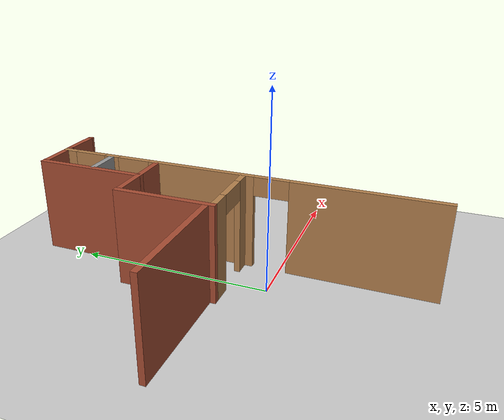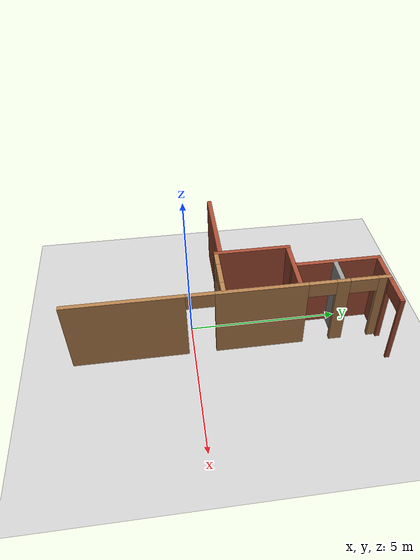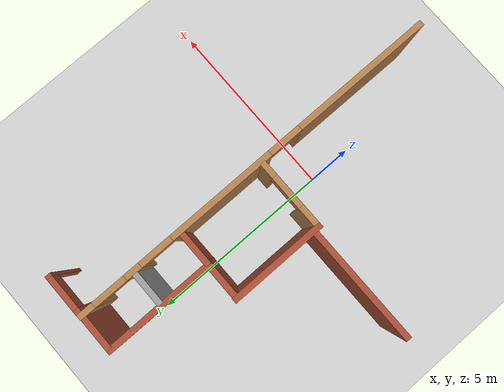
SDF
<sdf version="1.6">
 <world name="default">
  <model name="ground_plane">
   <static>1</static>
   <link name="link">
    <collision name="collision">
     <geometry><plane><normal>0 0 1</normal><size>100 100</size></plane></geometry>
     <surface>
      <contact><collide_bitmask>65535</collide_bitmask></contact>
      <friction><ode><mu>100</mu><mu2>50</mu2></ode></friction>
     </surface>
    </collision>
    <visual name="visual">
     <cast_shadows>0</cast_shadows>
     <geometry><plane><normal>0 0 1</normal><size>100 100</size></plane></geometry>
     <material>
      <script><uri>file://media/materials/scripts/gazebo.material</uri><name>Gazebo/Grey</name></script>
     </material>
    </visual>
   </link>
  </model>
  <model name="building">
   <link name="Wall_0">
    <pose>1.13831 5.31811 0 0 -0 0</pose>
    <visual name="Wall_0_Visual_2">
     <pose>0.011315 0 2.25 0 -0 0</pose>
     <geometry><box><size>0.9 0.15 0.5</size></box></geometry>
     <material>
      <script><uri>file://media/materials/scripts/gazebo.material</uri><name>Gazebo/Bricks</name></script>
      <ambient>1 1 1 1</ambient>
      <shader type="pixel"/>
      <diffuse>1 1 1 1</diffuse>
      <specular>0.2 0.2 0.2 1</specular>
      <emissive>0 0 0 1</emissive>
     </material>
     <meta><layer>0</layer></meta>
    </visual>
    <visual name="Wall_0_Visual_1">
     <pose>0.504908 0 1.25 0 -0 0</pose>
     <geometry><box><size>0.087185 0.15 2.5</size></box></geometry>
     <material>
      <script><uri>file://media/materials/scripts/gazebo.material</uri><name>Gazebo/Bricks</name></script>
      <ambient>1 1 1 1</ambient>
      <shader type="pixel"/>
      <diffuse>1 1 1 1</diffuse>
      <specular>0.2 0.2 0.2 1</specular>
      <emissive>0 0 0 1</emissive>
     </material>
     <meta><layer>0</layer></meta>
    </visual>
    <visual name="Wall_0_Visual_0">
     <pose>-0.493592 0 1.25 0 -0 0</pose>
     <geometry><box><size>0.109815 0.15 2.5</size></box></geometry>
     <material>
      <script><uri>file://media/materials/scripts/gazebo.material</uri><name>Gazebo/Bricks</name></script>
      <ambient>1 1 1 1</ambient>
      <shader type="pixel"/>
      <diffuse>1 1 1 1</diffuse>
      <specular>0.2 0.2 0.2 1</specular>
      <emissive>0 0 0 1</emissive>
     </material>
     <meta><layer>0</layer></meta>
    </visual>
    <collision name="Wall_0_Collision_2">
     <pose>0.011315 0 2.25 0 -0 0</pose>
     <geometry><box><size>0.9 0.15 0.5</size></box></geometry>
     <surface>
      <friction>
       <ode><mu>1</mu><mu2>1</mu2><fdir1>0 0 0</fdir1><slip1>0</slip1><slip2>0</slip2></ode>
       <torsional>
        <coefficient>1</coefficient>
        <patch_radius>0</patch_radius>
        <surface_radius>0</surface_radius>
        <use_patch_radius>1</use_patch_radius>
        <ode><slip>0</slip></ode>
       </torsional>
      </friction>
      <bounce><restitution_coefficient>0</restitution_coefficient><threshold>1e+06</threshold></bounce>
      <contact>
       <collide_without_contact>0</collide_without_contact>
       <collide_without_contact_bitmask>1</collide_without_contact_bitmask>
       <collide_bitmask>1</collide_bitmask>
       <ode>
        <soft_cfm>0</soft_cfm>
        <soft_erp>0.2</soft_erp>
        <kp>1e+13</kp>
        <kd>1</kd>
        <max_vel>0.01</max_vel>
        <min_depth>0</min_depth>
       </ode>
       <bullet>
        <split_impulse>1</split_impulse>
        <split_impulse_penetration_threshold>-0.01</split_impulse_penetration_threshold>
        <soft_cfm>0</soft_cfm>
        <soft_erp>0.2</soft_erp>
        <kp>1e+13</kp>
        <kd>1</kd>
       </bullet>
      </contact>
     </surface>
    </collision>
    <collision name="Wall_0_Collision_1">
     <pose>0.504908 0 1.25 0 -0 0</pose>
     <geometry><box><size>0.087185 0.15 2.5</size></box></geometry>
     <surface>
      <friction>
       <ode><mu>1</mu><mu2>1</mu2><fdir1>0 0 0</fdir1><slip1>0</slip1><slip2>0</slip2></ode>
       <torsional>
        <coefficient>1</coefficient>
        <patch_radius>0</patch_radius>
        <surface_radius>0</surface_radius>
        <use_patch_radius>1</use_patch_radius>
        <ode><slip>0</slip></ode>
       </torsional>
      </friction>
      <bounce><restitution_coefficient>0</restitution_coefficient><threshold>1e+06</threshold></bounce>
      <contact>
       <collide_without_contact>0</collide_without_contact>
       <collide_without_contact_bitmask>1</collide_without_contact_bitmask>
       <collide_bitmask>1</collide_bitmask>
       <ode>
        <soft_cfm>0</soft_cfm>
        <soft_erp>0.2</soft_erp>
        <kp>1e+13</kp>
        <kd>1</kd>
        <max_vel>0.01</max_vel>
        <min_depth>0</min_depth>
       </ode>
       <bullet>
        <split_impulse>1</split_impulse>
        <split_impulse_penetration_threshold>-0.01</split_impulse_penetration_threshold>
        <soft_cfm>0</soft_cfm>
        <soft_erp>0.2</soft_erp>
        <kp>1e+13</kp>
        <kd>1</kd>
       </bullet>
      </contact>
     </surface>
    </collision>
    <collision name="Wall_0_Collision_0">
     <pose>-0.493592 0 1.25 0 -0 0</pose>
     <geometry><box><size>0.109815 0.15 2.5</size></box></geometry>
     <surface>
      <friction>
       <ode><mu>1</mu><mu2>1</mu2><fdir1>0 0 0</fdir1><slip1>0</slip1><slip2>0</slip2></ode>
       <torsional>
        <coefficient>1</coefficient>
        <patch_radius>0</patch_radius>
        <surface_radius>0</surface_radius>
        <use_patch_radius>1</use_patch_radius>
        <ode><slip>0</slip></ode>
       </torsional>
      </friction>
      <bounce><restitution_coefficient>0</restitution_coefficient><threshold>1e+06</threshold></bounce>
      <contact>
       <collide_without_contact>0</collide_without_contact>
       <collide_without_contact_bitmask>1</collide_without_contact_bitmask>
       <collide_bitmask>1</collide_bitmask>
       <ode>
        <soft_cfm>0</soft_cfm>
        <soft_erp>0.2</soft_erp>
        <kp>1e+13</kp>
        <kd>1</kd>
        <max_vel>0.01</max_vel>
        <min_depth>0</min_depth>
       </ode>
       <bullet>
        <split_impulse>1</split_impulse>
        <split_impulse_penetration_threshold>-0.01</split_impulse_penetration_threshold>
        <soft_cfm>0</soft_cfm>
        <soft_erp>0.2</soft_erp>
        <kp>1e+13</kp>
        <kd>1</kd>
       </bullet>
      </contact>
     </surface>
    </collision>
   </link>
   <link name="Wall_13">
    <pose>-1.43039 1.30845 0 0 0 -1.5708</pose>
    <visual name="Wall_13_Visual">
     <pose>0 0 1.25 0 -0 0</pose>
     <geometry><box><size>2.56 0.15 2.5</size></box></geometry>
     <material>
      <script><uri>file://media/materials/scripts/gazebo.material</uri><name>Gazebo/Bricks</name></script>
      <ambient>1 1 1 1</ambient>
      <shader type="pixel"/>
      <diffuse>1 1 1 1</diffuse>
      <specular>0.2 0.2 0.2 1</specular>
      <emissive>0 0 0 1</emissive>
     </material>
     <meta><layer>0</layer></meta>
    </visual>
    <collision name="Wall_13_Collision">
     <pose>0 0 1.25 0 -0 0</pose>
     <geometry><box><size>2.56 0.15 2.5</size></box></geometry>
     <surface>
      <friction>
       <ode><mu>1</mu><mu2>1</mu2><fdir1>0 0 0</fdir1><slip1>0</slip1><slip2>0</slip2></ode>
       <torsional>
        <coefficient>1</coefficient>
        <patch_radius>0</patch_radius>
        <surface_radius>0</surface_radius>
        <use_patch_radius>1</use_patch_radius>
        <ode><slip>0</slip></ode>
       </torsional>
      </friction>
      <bounce><restitution_coefficient>0</restitution_coefficient><threshold>1e+06</threshold></bounce>
      <contact>
       <collide_without_contact>0</collide_without_contact>
       <collide_without_contact_bitmask>1</collide_without_contact_bitmask>
       <collide_bitmask>1</collide_bitmask>
       <ode>
        <soft_cfm>0</soft_cfm>
        <soft_erp>0.2</soft_erp>
        <kp>1e+13</kp>
        <kd>1</kd>
        <max_vel>0.01</max_vel>
        <min_depth>0</min_depth>
       </ode>
       <bullet>
        <split_impulse>1</split_impulse>
        <split_impulse_penetration_threshold>-0.01</split_impulse_penetration_threshold>
        <soft_cfm>0</soft_cfm>
        <soft_erp>0.2</soft_erp>
        <kp>1e+13</kp>
        <kd>1</kd>
       </bullet>
      </contact>
     </surface>
    </collision>
   </link>
   <link name="Wall_15">
    <pose>-0.450099 0.103376 0 0 -0 0</pose>
    <visual name="Wall_15_Visual_0">
     <pose>-0.653856 0 1.25 0 -0 0</pose>
     <geometry><box><size>0.520288 0.15 2.5</size></box></geometry>
     <material>
      <script><uri>file://media/materials/scripts/gazebo.material</uri><name>Gazebo/Wood</name></script>
      <ambient>0.921569 0.807843 0.615686 1</ambient>
      <shader type="pixel"/>
      <diffuse>1 1 1 1</diffuse>
      <specular>0.2 0.2 0.2 1</specular>
      <emissive>0 0 0 1</emissive>
     </material>
     <meta><layer>0</layer></meta>
    </visual>
    <visual name="Wall_15_Visual_2">
     <pose>0.056288 0 2.25 0 -0 0</pose>
     <geometry><box><size>0.9 0.15 0.5</size></box></geometry>
     <material>
      <script><uri>file://media/materials/scripts/gazebo.material</uri><name>Gazebo/Wood</name></script>
      <ambient>0.921569 0.807843 0.615686 1</ambient>
      <shader type="pixel"/>
      <diffuse>1 1 1 1</diffuse>
      <specular>0.2 0.2 0.2 1</specular>
      <emissive>0 0 0 1</emissive>
     </material>
     <meta><layer>0</layer></meta>
    </visual>
    <visual name="Wall_15_Visual_1">
     <pose>0.710144 0 1.25 0 -0 0</pose>
     <geometry><box><size>0.407712 0.15 2.5</size></box></geometry>
     <material>
      <script><uri>file://media/materials/scripts/gazebo.material</uri><name>Gazebo/Wood</name></script>
      <ambient>0.921569 0.807843 0.615686 1</ambient>
      <shader type="pixel"/>
      <diffuse>1 1 1 1</diffuse>
      <specular>0.2 0.2 0.2 1</specular>
      <emissive>0 0 0 1</emissive>
     </material>
     <meta><layer>0</layer></meta>
    </visual>
    <collision name="Wall_15_Collision_1">
     <pose>0.710144 0 1.25 0 -0 0</pose>
     <geometry><box><size>0.407712 0.15 2.5</size></box></geometry>
     <surface>
      <friction>
       <ode><mu>1</mu><mu2>1</mu2><fdir1>0 0 0</fdir1><slip1>0</slip1><slip2>0</slip2></ode>
       <torsional>
        <coefficient>1</coefficient>
        <patch_radius>0</patch_radius>
        <surface_radius>0</surface_radius>
        <use_patch_radius>1</use_patch_radius>
        <ode><slip>0</slip></ode>
       </torsional>
      </friction>
      <bounce><restitution_coefficient>0</restitution_coefficient><threshold>1e+06</threshold></bounce>
      <contact>
       <collide_without_contact>0</collide_without_contact>
       <collide_without_contact_bitmask>1</collide_without_contact_bitmask>
       <collide_bitmask>1</collide_bitmask>
       <ode>
        <soft_cfm>0</soft_cfm>
        <soft_erp>0.2</soft_erp>
        <kp>1e+13</kp>
        <kd>1</kd>
        <max_vel>0.01</max_vel>
        <min_depth>0</min_depth>
       </ode>
       <bullet>
        <split_impulse>1</split_impulse>
        <split_impulse_penetration_threshold>-0.01</split_impulse_penetration_threshold>
        <soft_cfm>0</soft_cfm>
        <soft_erp>0.2</soft_erp>
        <kp>1e+13</kp>
        <kd>1</kd>
       </bullet>
      </contact>
     </surface>
    </collision>
    <collision name="Wall_15_Collision_0">
     <pose>-0.653856 0 1.25 0 -0 0</pose>
     <geometry><box><size>0.520288 0.15 2.5</size></box></geometry>
     <surface>
      <friction>
       <ode><mu>1</mu><mu2>1</mu2><fdir1>0 0 0</fdir1><slip1>0</slip1><slip2>0</slip2></ode>
       <torsional>
        <coefficient>1</coefficient>
        <patch_radius>0</patch_radius>
        <surface_radius>0</surface_radius>
        <use_patch_radius>1</use_patch_radius>
        <ode><slip>0</slip></ode>
       </torsional>
      </friction>
      <bounce><restitution_coefficient>0</restitution_coefficient><threshold>1e+06</threshold></bounce>
      <contact>
       <collide_without_contact>0</collide_without_contact>
       <collide_without_contact_bitmask>1</collide_without_contact_bitmask>
       <collide_bitmask>1</collide_bitmask>
       <ode>
        <soft_cfm>0</soft_cfm>
        <soft_erp>0.2</soft_erp>
        <kp>1e+13</kp>
        <kd>1</kd>
        <max_vel>0.01</max_vel>
        <min_depth>0</min_depth>
       </ode>
       <bullet>
        <split_impulse>1</split_impulse>
        <split_impulse_penetration_threshold>-0.01</split_impulse_penetration_threshold>
        <soft_cfm>0</soft_cfm>
        <soft_erp>0.2</soft_erp>
        <kp>1e+13</kp>
        <kd>1</kd>
       </bullet>
      </contact>
     </surface>
    </collision>
    <collision name="Wall_15_Collision_2">
     <pose>0.056288 0 2.25 0 -0 0</pose>
     <geometry><box><size>0.9 0.15 0.5</size></box></geometry>
     <surface>
      <friction>
       <ode><mu>1</mu><mu2>1</mu2><fdir1>0 0 0</fdir1><slip1>0</slip1><slip2>0</slip2></ode>
       <torsional>
        <coefficient>1</coefficient>
        <patch_radius>0</patch_radius>
        <surface_radius>0</surface_radius>
        <use_patch_radius>1</use_patch_radius>
        <ode><slip>0</slip></ode>
       </torsional>
      </friction>
      <bounce><restitution_coefficient>0</restitution_coefficient><threshold>1e+06</threshold></bounce>
      <contact>
       <collide_without_contact>0</collide_without_contact>
       <collide_without_contact_bitmask>1</collide_without_contact_bitmask>
       <collide_bitmask>1</collide_bitmask>
       <ode>
        <soft_cfm>0</soft_cfm>
        <soft_erp>0.2</soft_erp>
        <kp>1e+13</kp>
        <kd>1</kd>
        <max_vel>0.01</max_vel>
        <min_depth>0</min_depth>
       </ode>
       <bullet>
        <split_impulse>1</split_impulse>
        <split_impulse_penetration_threshold>-0.01</split_impulse_penetration_threshold>
        <soft_cfm>0</soft_cfm>
        <soft_erp>0.2</soft_erp>
        <kp>1e+13</kp>
        <kd>1</kd>
       </bullet>
      </contact>
     </surface>
    </collision>
   </link>
   <link name="Wall_17">
    <pose>-0.444265 2.49971 0 0 -0 0</pose>
    <visual name="Wall_17_Visual">
     <pose>0 0 1.25 0 -0 0</pose>
     <geometry><box><size>1.828 0.15 2.5</size></box></geometry>
     <material>
      <script><uri>file://media/materials/scripts/gazebo.material</uri><name>Gazebo/Bricks</name></script>
      <ambient>1 1 1 1</ambient>
      <shader type="pixel"/>
      <diffuse>1 1 1 1</diffuse>
      <specular>0.2 0.2 0.2 1</specular>
      <emissive>0 0 0 1</emissive>
     </material>
     <meta><layer>0</layer></meta>
    </visual>
    <collision name="Wall_17_Collision">
     <pose>0 0 1.25 0 -0 0</pose>
     <geometry><box><size>1.828 0.15 2.5</size></box></geometry>
     <surface>
      <friction>
       <ode><mu>1</mu><mu2>1</mu2><fdir1>0 0 0</fdir1><slip1>0</slip1><slip2>0</slip2></ode>
       <torsional>
        <coefficient>1</coefficient>
        <patch_radius>0</patch_radius>
        <surface_radius>0</surface_radius>
        <use_patch_radius>1</use_patch_radius>
        <ode><slip>0</slip></ode>
       </torsional>
      </friction>
      <bounce><restitution_coefficient>0</restitution_coefficient><threshold>1e+06</threshold></bounce>
      <contact>
       <collide_without_contact>0</collide_without_contact>
       <collide_without_contact_bitmask>1</collide_without_contact_bitmask>
       <collide_bitmask>1</collide_bitmask>
       <ode>
        <soft_cfm>0</soft_cfm>
        <soft_erp>0.2</soft_erp>
        <kp>1e+13</kp>
        <kd>1</kd>
        <max_vel>0.01</max_vel>
        <min_depth>0</min_depth>
       </ode>
       <bullet>
        <split_impulse>1</split_impulse>
        <split_impulse_penetration_threshold>-0.01</split_impulse_penetration_threshold>
        <soft_cfm>0</soft_cfm>
        <soft_erp>0.2</soft_erp>
        <kp>1e+13</kp>
        <kd>1</kd>
       </bullet>
      </contact>
     </surface>
    </collision>
   </link>
   <link name="Wall_19">
    <pose>-3.0169 0.243542 0 0 -0 3.14159</pose>
    <visual name="Wall_19_Visual">
     <pose>0 0 1.25 0 -0 0</pose>
     <geometry><box><size>3.048 0.15 2.5</size></box></geometry>
     <material>
      <script><uri>file://media/materials/scripts/gazebo.material</uri><name>Gazebo/Bricks</name></script>
      <ambient>0.921569 0.807843 0.615686 1</ambient>
      <shader type="pixel"/>
      <diffuse>1 1 1 1</diffuse>
      <specular>0.2 0.2 0.2 1</specular>
      <emissive>0 0 0 1</emissive>
     </material>
     <meta><layer>0</layer></meta>
    </visual>
    <collision name="Wall_19_Collision">
     <pose>0 0 1.25 0 -0 0</pose>
     <geometry><box><size>3.048 0.15 2.5</size></box></geometry>
     <surface>
      <friction>
       <ode><mu>1</mu><mu2>1</mu2><fdir1>0 0 0</fdir1><slip1>0</slip1><slip2>0</slip2></ode>
       <torsional>
        <coefficient>1</coefficient>
        <patch_radius>0</patch_radius>
        <surface_radius>0</surface_radius>
        <use_patch_radius>1</use_patch_radius>
        <ode><slip>0</slip></ode>
       </torsional>
      </friction>
      <bounce><restitution_coefficient>0</restitution_coefficient><threshold>1e+06</threshold></bounce>
      <contact>
       <collide_without_contact>0</collide_without_contact>
       <collide_without_contact_bitmask>1</collide_without_contact_bitmask>
       <collide_bitmask>1</collide_bitmask>
       <ode>
        <soft_cfm>0</soft_cfm>
        <soft_erp>0.2</soft_erp>
        <kp>1e+13</kp>
        <kd>1</kd>
        <max_vel>0.01</max_vel>
        <min_depth>0</min_depth>
       </ode>
       <bullet>
        <split_impulse>1</split_impulse>
        <split_impulse_penetration_threshold>-0.01</split_impulse_penetration_threshold>
        <soft_cfm>0</soft_cfm>
        <soft_erp>0.2</soft_erp>
        <kp>1e+13</kp>
        <kd>1</kd>
       </bullet>
      </contact>
     </surface>
    </collision>
   </link>
   <link name="Wall_30">
    <pose>0 5.30246 0 0 -0 0</pose>
    <inertial>
     <mass>1</mass>
     <inertia><ixx>1</ixx><ixy>0</ixy><ixz>0</ixz><iyy>1</iyy><iyz>0</iyz><izz>1</izz></inertia>
    </inertial>
    <visual name="Wall_30_Visual">
     <pose>0 0 1.25 0 -0 0</pose>
     <geometry><box><size>0.884 0.15 2.5</size></box></geometry>
     <material>
      <script><uri>file://media/materials/scripts/gazebo.material</uri><name>Gazebo/Bricks</name></script>
      <ambient>1 1 1 1</ambient>
      <shader type="pixel"><normal_map>__default__</normal_map></shader>
      <diffuse>1 1 1 1</diffuse>
      <specular>0.2 0.2 0.2 1</specular>
      <emissive>0 0 0 1</emissive>
     </material>
     <meta><layer>0</layer></meta>
    </visual>
    <collision name="Wall_30_Collision">
     <pose>0 0 1.25 0 -0 0</pose>
     <geometry><box><size>0.884 0.15 2.5</size></box></geometry>
     <surface>
      <friction>
       <ode><mu>1</mu><mu2>1</mu2><fdir1>0 0 0</fdir1><slip1>0</slip1><slip2>0</slip2></ode>
       <torsional>
        <coefficient>1</coefficient>
        <patch_radius>0</patch_radius>
        <surface_radius>0</surface_radius>
        <use_patch_radius>1</use_patch_radius>
        <ode><slip>0</slip></ode>
       </torsional>
      </friction>
      <bounce><restitution_coefficient>0</restitution_coefficient><threshold>1e+06</threshold></bounce>
      <contact>
       <collide_without_contact>0</collide_without_contact>
       <collide_without_contact_bitmask>1</collide_without_contact_bitmask>
       <collide_bitmask>1</collide_bitmask>
       <ode>
        <soft_cfm>0</soft_cfm>
        <soft_erp>0.2</soft_erp>
        <kp>1e+13</kp>
        <kd>1</kd>
        <max_vel>0.01</max_vel>
        <min_depth>0</min_depth>
       </ode>
       <bullet>
        <split_impulse>1</split_impulse>
        <split_impulse_penetration_threshold>-0.01</split_impulse_penetration_threshold>
        <soft_cfm>0</soft_cfm>
        <soft_erp>0.2</soft_erp>
        <kp>1e+13</kp>
        <kd>1</kd>
       </bullet>
      </contact>
     </surface>
    </collision>
   </link>
   <link name="Wall_32">
    <pose>0.00652 3.84623 0 0 -0 0</pose>
    <visual name="Wall_32_Visual">
     <pose>0 0 1.25 0 -0 0</pose>
     <geometry><box><size>0.884 0.15 2.5</size></box></geometry>
     <material>
      <script><uri>file://media/materials/scripts/gazebo.material</uri><name>Gazebo/Grey</name></script>
      <ambient>1 1 1 1</ambient>
      <shader type="pixel"/>
      <diffuse>0.7 0.7 0.7 1</diffuse>
      <specular>0.01 0.01 0.01 1</specular>
      <emissive>0 0 0 1</emissive>
     </material>
     <meta><layer>0</layer></meta>
    </visual>
    <collision name="Wall_32_Collision">
     <pose>0 0 1.25 0 -0 0</pose>
     <geometry><box><size>0.884 0.15 2.5</size></box></geometry>
     <surface>
      <friction>
       <ode><mu>1</mu><mu2>1</mu2><fdir1>0 0 0</fdir1><slip1>0</slip1><slip2>0</slip2></ode>
       <torsional>
        <coefficient>1</coefficient>
        <patch_radius>0</patch_radius>
        <surface_radius>0</surface_radius>
        <use_patch_radius>1</use_patch_radius>
        <ode><slip>0</slip></ode>
       </torsional>
      </friction>
      <bounce><restitution_coefficient>0</restitution_coefficient><threshold>1e+06</threshold></bounce>
      <contact>
       <collide_without_contact>0</collide_without_contact>
       <collide_without_contact_bitmask>1</collide_without_contact_bitmask>
       <collide_bitmask>1</collide_bitmask>
       <ode>
        <soft_cfm>0</soft_cfm>
        <soft_erp>0.2</soft_erp>
        <kp>1e+13</kp>
        <kd>1</kd>
        <max_vel>0.01</max_vel>
        <min_depth>0</min_depth>
       </ode>
       <bullet>
        <split_impulse>1</split_impulse>
        <split_impulse_penetration_threshold>-0.01</split_impulse_penetration_threshold>
        <soft_cfm>0</soft_cfm>
        <soft_erp>0.2</soft_erp>
        <kp>1e+13</kp>
        <kd>1</kd>
       </bullet>
      </contact>
     </surface>
    </collision>
   </link>
   <link name="Wall_34">
    <pose>-0.465364 3.89844 0 0 0 -1.5708</pose>
    <inertial>
     <mass>1</mass>
     <inertia><ixx>1</ixx><ixy>0</ixy><ixz>0</ixz><iyy>1</iyy><iyz>0</iyz><izz>1</izz></inertia>
    </inertial>
    <visual name="Wall_34_Visual">
     <pose>0 0 1.25 0 -0 0</pose>
     <geometry><box><size>2.955 0.15 2.5</size></box></geometry>
     <material>
      <script><uri>file://media/materials/scripts/gazebo.material</uri><name>Gazebo/Bricks</name></script>
      <ambient>1 1 1 1</ambient>
      <shader type="pixel"><normal_map>__default__</normal_map></shader>
      <diffuse>1 1 1 1</diffuse>
      <specular>0.2 0.2 0.2 1</specular>
      <emissive>0 0 0 1</emissive>
     </material>
     <meta><layer>0</layer></meta>
    </visual>
    <collision name="Wall_34_Collision">
     <pose>0 0 1.25 0 -0 0</pose>
     <geometry><box><size>2.955 0.15 2.5</size></box></geometry>
     <surface>
      <friction>
       <ode><mu>1</mu><mu2>1</mu2><fdir1>0 0 0</fdir1><slip1>0</slip1><slip2>0</slip2></ode>
       <torsional>
        <coefficient>1</coefficient>
        <patch_radius>0</patch_radius>
        <surface_radius>0</surface_radius>
        <use_patch_radius>1</use_patch_radius>
        <ode><slip>0</slip></ode>
       </torsional>
      </friction>
      <bounce><restitution_coefficient>0</restitution_coefficient><threshold>1e+06</threshold></bounce>
      <contact>
       <collide_without_contact>0</collide_without_contact>
       <collide_without_contact_bitmask>1</collide_without_contact_bitmask>
       <collide_bitmask>1</collide_bitmask>
       <ode>
        <soft_cfm>0</soft_cfm>
        <soft_erp>0.2</soft_erp>
        <kp>1e+13</kp>
        <kd>1</kd>
        <max_vel>0.01</max_vel>
        <min_depth>0</min_depth>
       </ode>
       <bullet>
        <split_impulse>1</split_impulse>
        <split_impulse_penetration_threshold>-0.01</split_impulse_penetration_threshold>
        <soft_cfm>0</soft_cfm>
        <soft_erp>0.2</soft_erp>
        <kp>1e+13</kp>
        <kd>1</kd>
       </bullet>
      </contact>
     </surface>
    </collision>
   </link>
   <link name="Wall_6">
    <pose>0.51311 0.277814 0 0 0 -1.5708</pose>
    <visual name="Wall_6_Visual_0">
     <pose>-4.90073 0 1.25 0 -0 0</pose>
     <geometry><box><size>0.421534 0.15 2.5</size></box></geometry>
     <material>
      <script><uri>file://media/materials/scripts/gazebo.material</uri><name>Gazebo/Wood</name></script>
      <ambient>0.921569 0.807843 0.615686 1</ambient>
      <shader type="pixel"/>
      <diffuse>1 1 1 1</diffuse>
      <specular>0.2 0.2 0.2 1</specular>
      <emissive>0 0 0 1</emissive>
     </material>
     <meta><layer>0</layer></meta>
    </visual>
    <visual name="Wall_6_Visual_2">
     <pose>-1.00818 0 1.25 0 -0 0</pose>
     <geometry><box><size>2.91511 0.15 2.5</size></box></geometry>
     <material>
      <script><uri>file://media/materials/scripts/gazebo.material</uri><name>Gazebo/Wood</name></script>
      <ambient>0.921569 0.807843 0.615686 1</ambient>
      <shader type="pixel"/>
      <diffuse>1 1 1 1</diffuse>
      <specular>0.2 0.2 0.2 1</specular>
      <emissive>0 0 0 1</emissive>
     </material>
     <meta><layer>0</layer></meta>
    </visual>
    <visual name="Wall_6_Visual_1">
     <pose>-3.57785 0 1.25 0 -0 0</pose>
     <geometry><box><size>0.424235 0.15 2.5</size></box></geometry>
     <material>
      <script><uri>file://media/materials/scripts/gazebo.material</uri><name>Gazebo/Wood</name></script>
      <ambient>0.921569 0.807843 0.615686 1</ambient>
      <shader type="pixel"/>
      <diffuse>1 1 1 1</diffuse>
      <specular>0.2 0.2 0.2 1</specular>
      <emissive>0 0 0 1</emissive>
     </material>
     <meta><layer>0</layer></meta>
    </visual>
    <visual name="Wall_6_Visual_3">
     <pose>3.23044 0 1.25 0 -0 0</pose>
     <geometry><box><size>3.76212 0.15 2.5</size></box></geometry>
     <material>
      <script><uri>file://media/materials/scripts/gazebo.material</uri><name>Gazebo/Wood</name></script>
      <ambient>0.921569 0.807843 0.615686 1</ambient>
      <shader type="pixel"/>
      <diffuse>1 1 1 1</diffuse>
      <specular>0.2 0.2 0.2 1</specular>
      <emissive>0 0 0 1</emissive>
     </material>
     <meta><layer>0</layer></meta>
    </visual>
    <visual name="Wall_6_Visual_4">
     <pose>-4.23997 0 2.25 0 -0 0</pose>
     <geometry><box><size>0.9 0.15 0.5</size></box></geometry>
     <material>
      <script><uri>file://media/materials/scripts/gazebo.material</uri><name>Gazebo/Wood</name></script>
      <ambient>0.921569 0.807843 0.615686 1</ambient>
      <shader type="pixel"/>
      <diffuse>1 1 1 1</diffuse>
      <specular>0.2 0.2 0.2 1</specular>
      <emissive>0 0 0 1</emissive>
     </material>
     <meta><layer>0</layer></meta>
    </visual>
    <visual name="Wall_6_Visual_5">
     <pose>-2.91573 0 2.25 0 -0 0</pose>
     <geometry><box><size>0.9 0.15 0.5</size></box></geometry>
     <material>
      <script><uri>file://media/materials/scripts/gazebo.material</uri><name>Gazebo/Wood</name></script>
      <ambient>0.921569 0.807843 0.615686 1</ambient>
      <shader type="pixel"/>
      <diffuse>1 1 1 1</diffuse>
      <specular>0.2 0.2 0.2 1</specular>
      <emissive>0 0 0 1</emissive>
     </material>
     <meta><layer>0</layer></meta>
    </visual>
    <visual name="Wall_6_Visual_6">
     <pose>0.899377 0 2.25 0 -0 0</pose>
     <geometry><box><size>0.9 0.15 0.5</size></box></geometry>
     <material>
      <script><uri>file://media/materials/scripts/gazebo.material</uri><name>Gazebo/Wood</name></script>
      <ambient>0.921569 0.807843 0.615686 1</ambient>
      <shader type="pixel"/>
      <diffuse>1 1 1 1</diffuse>
      <specular>0.2 0.2 0.2 1</specular>
      <emissive>0 0 0 1</emissive>
     </material>
     <meta><layer>0</layer></meta>
    </visual>
    <collision name="Wall_6_Collision_4">
     <pose>-4.23997 0 2.25 0 -0 0</pose>
     <geometry><box><size>0.9 0.15 0.5</size></box></geometry>
     <surface>
      <friction>
       <ode><mu>1</mu><mu2>1</mu2><fdir1>0 0 0</fdir1><slip1>0</slip1><slip2>0</slip2></ode>
       <torsional>
        <coefficient>1</coefficient>
        <patch_radius>0</patch_radius>
        <surface_radius>0</surface_radius>
        <use_patch_radius>1</use_patch_radius>
        <ode><slip>0</slip></ode>
       </torsional>
      </friction>
      <bounce><restitution_coefficient>0</restitution_coefficient><threshold>1e+06</threshold></bounce>
      <contact>
       <collide_without_contact>0</collide_without_contact>
       <collide_without_contact_bitmask>1</collide_without_contact_bitmask>
       <collide_bitmask>1</collide_bitmask>
       <ode>
        <soft_cfm>0</soft_cfm>
        <soft_erp>0.2</soft_erp>
        <kp>1e+13</kp>
        <kd>1</kd>
        <max_vel>0.01</max_vel>
        <min_depth>0</min_depth>
       </ode>
       <bullet>
        <split_impulse>1</split_impulse>
        <split_impulse_penetration_threshold>-0.01</split_impulse_penetration_threshold>
        <soft_cfm>0</soft_cfm>
        <soft_erp>0.2</soft_erp>
        <kp>1e+13</kp>
        <kd>1</kd>
       </bullet>
      </contact>
     </surface>
    </collision>
    <collision name="Wall_6_Collision_3">
     <pose>3.23044 0 1.25 0 -0 0</pose>
     <geometry><box><size>3.76212 0.15 2.5</size></box></geometry>
     <surface>
      <friction>
       <ode><mu>1</mu><mu2>1</mu2><fdir1>0 0 0</fdir1><slip1>0</slip1><slip2>0</slip2></ode>
       <torsional>
        <coefficient>1</coefficient>
        <patch_radius>0</patch_radius>
        <surface_radius>0</surface_radius>
        <use_patch_radius>1</use_patch_radius>
        <ode><slip>0</slip></ode>
       </torsional>
      </friction>
      <bounce><restitution_coefficient>0</restitution_coefficient><threshold>1e+06</threshold></bounce>
      <contact>
       <collide_without_contact>0</collide_without_contact>
       <collide_without_contact_bitmask>1</collide_without_contact_bitmask>
       <collide_bitmask>1</collide_bitmask>
       <ode>
        <soft_cfm>0</soft_cfm>
        <soft_erp>0.2</soft_erp>
        <kp>1e+13</kp>
        <kd>1</kd>
        <max_vel>0.01</max_vel>
        <min_depth>0</min_depth>
       </ode>
       <bullet>
        <split_impulse>1</split_impulse>
        <split_impulse_penetration_threshold>-0.01</split_impulse_penetration_threshold>
        <soft_cfm>0</soft_cfm>
        <soft_erp>0.2</soft_erp>
        <kp>1e+13</kp>
        <kd>1</kd>
       </bullet>
      </contact>
     </surface>
    </collision>
    <collision name="Wall_6_Collision_0">
     <pose>-4.90073 0 1.25 0 -0 0</pose>
     <geometry><box><size>0.421534 0.15 2.5</size></box></geometry>
     <surface>
      <friction>
       <ode><mu>1</mu><mu2>1</mu2><fdir1>0 0 0</fdir1><slip1>0</slip1><slip2>0</slip2></ode>
       <torsional>
        <coefficient>1</coefficient>
        <patch_radius>0</patch_radius>
        <surface_radius>0</surface_radius>
        <use_patch_radius>1</use_patch_radius>
        <ode><slip>0</slip></ode>
       </torsional>
      </friction>
      <bounce><restitution_coefficient>0</restitution_coefficient><threshold>1e+06</threshold></bounce>
      <contact>
       <collide_without_contact>0</collide_without_contact>
       <collide_without_contact_bitmask>1</collide_without_contact_bitmask>
       <collide_bitmask>1</collide_bitmask>
       <ode>
        <soft_cfm>0</soft_cfm>
        <soft_erp>0.2</soft_erp>
        <kp>1e+13</kp>
        <kd>1</kd>
        <max_vel>0.01</max_vel>
        <min_depth>0</min_depth>
       </ode>
       <bullet>
        <split_impulse>1</split_impulse>
        <split_impulse_penetration_threshold>-0.01</split_impulse_penetration_threshold>
        <soft_cfm>0</soft_cfm>
        <soft_erp>0.2</soft_erp>
        <kp>1e+13</kp>
        <kd>1</kd>
       </bullet>
      </contact>
     </surface>
    </collision>
    <collision name="Wall_6_Collision_2">
     <pose>-1.00818 0 1.25 0 -0 0</pose>
     <geometry><box><size>2.91511 0.15 2.5</size></box></geometry>
     <surface>
      <friction>
       <ode><mu>1</mu><mu2>1</mu2><fdir1>0 0 0</fdir1><slip1>0</slip1><slip2>0</slip2></ode>
       <torsional>
        <coefficient>1</coefficient>
        <patch_radius>0</patch_radius>
        <surface_radius>0</surface_radius>
        <use_patch_radius>1</use_patch_radius>
        <ode><slip>0</slip></ode>
       </torsional>
      </friction>
      <bounce><restitution_coefficient>0</restitution_coefficient><threshold>1e+06</threshold></bounce>
      <contact>
       <collide_without_contact>0</collide_without_contact>
       <collide_without_contact_bitmask>1</collide_without_contact_bitmask>
       <collide_bitmask>1</collide_bitmask>
       <ode>
        <soft_cfm>0</soft_cfm>
        <soft_erp>0.2</soft_erp>
        <kp>1e+13</kp>
        <kd>1</kd>
        <max_vel>0.01</max_vel>
        <min_depth>0</min_depth>
       </ode>
       <bullet>
        <split_impulse>1</split_impulse>
        <split_impulse_penetration_threshold>-0.01</split_impulse_penetration_threshold>
        <soft_cfm>0</soft_cfm>
        <soft_erp>0.2</soft_erp>
        <kp>1e+13</kp>
        <kd>1</kd>
       </bullet>
      </contact>
     </surface>
    </collision>
    <collision name="Wall_6_Collision_1">
     <pose>-3.57785 0 1.25 0 -0 0</pose>
     <geometry><box><size>0.424235 0.15 2.5</size></box></geometry>
     <surface>
      <friction>
       <ode><mu>1</mu><mu2>1</mu2><fdir1>0 0 0</fdir1><slip1>0</slip1><slip2>0</slip2></ode>
       <torsional>
        <coefficient>1</coefficient>
        <patch_radius>0</patch_radius>
        <surface_radius>0</surface_radius>
        <use_patch_radius>1</use_patch_radius>
        <ode><slip>0</slip></ode>
       </torsional>
      </friction>
      <bounce><restitution_coefficient>0</restitution_coefficient><threshold>1e+06</threshold></bounce>
      <contact>
       <collide_without_contact>0</collide_without_contact>
       <collide_without_contact_bitmask>1</collide_without_contact_bitmask>
       <collide_bitmask>1</collide_bitmask>
       <ode>
        <soft_cfm>0</soft_cfm>
        <soft_erp>0.2</soft_erp>
        <kp>1e+13</kp>
        <kd>1</kd>
        <max_vel>0.01</max_vel>
        <min_depth>0</min_depth>
       </ode>
       <bullet>
        <split_impulse>1</split_impulse>
        <split_impulse_penetration_threshold>-0.01</split_impulse_penetration_threshold>
        <soft_cfm>0</soft_cfm>
        <soft_erp>0.2</soft_erp>
        <kp>1e+13</kp>
        <kd>1</kd>
       </bullet>
      </contact>
     </surface>
    </collision>
    <collision name="Wall_6_Collision_5">
     <pose>-2.91573 0 2.25 0 -0 0</pose>
     <geometry><box><size>0.9 0.15 0.5</size></box></geometry>
     <surface>
      <friction>
       <ode><mu>1</mu><mu2>1</mu2><fdir1>0 0 0</fdir1><slip1>0</slip1><slip2>0</slip2></ode>
       <torsional>
        <coefficient>1</coefficient>
        <patch_radius>0</patch_radius>
        <surface_radius>0</surface_radius>
        <use_patch_radius>1</use_patch_radius>
        <ode><slip>0</slip></ode>
       </torsional>
      </friction>
      <bounce><restitution_coefficient>0</restitution_coefficient><threshold>1e+06</threshold></bounce>
      <contact>
       <collide_without_contact>0</collide_without_contact>
       <collide_without_contact_bitmask>1</collide_without_contact_bitmask>
       <collide_bitmask>1</collide_bitmask>
       <ode>
        <soft_cfm>0</soft_cfm>
        <soft_erp>0.2</soft_erp>
        <kp>1e+13</kp>
        <kd>1</kd>
        <max_vel>0.01</max_vel>
        <min_depth>0</min_depth>
       </ode>
       <bullet>
        <split_impulse>1</split_impulse>
        <split_impulse_penetration_threshold>-0.01</split_impulse_penetration_threshold>
        <soft_cfm>0</soft_cfm>
        <soft_erp>0.2</soft_erp>
        <kp>1e+13</kp>
        <kd>1</kd>
       </bullet>
      </contact>
     </surface>
    </collision>
    <collision name="Wall_6_Collision_6">
     <pose>0.899377 0 2.25 0 -0 0</pose>
     <geometry><box><size>0.9 0.15 0.5</size></box></geometry>
     <surface>
      <friction>
       <ode><mu>1</mu><mu2>1</mu2><fdir1>0 0 0</fdir1><slip1>0</slip1><slip2>0</slip2></ode>
       <torsional>
        <coefficient>1</coefficient>
        <patch_radius>0</patch_radius>
        <surface_radius>0</surface_radius>
        <use_patch_radius>1</use_patch_radius>
        <ode><slip>0</slip></ode>
       </torsional>
      </friction>
      <bounce><restitution_coefficient>0</restitution_coefficient><threshold>1e+06</threshold></bounce>
      <contact>
       <collide_without_contact>0</collide_without_contact>
       <collide_without_contact_bitmask>1</collide_without_contact_bitmask>
       <collide_bitmask>1</collide_bitmask>
       <ode>
        <soft_cfm>0</soft_cfm>
        <soft_erp>0.2</soft_erp>
        <kp>1e+13</kp>
        <kd>1</kd>
        <max_vel>0.01</max_vel>
        <min_depth>0</min_depth>
       </ode>
       <bullet>
        <split_impulse>1</split_impulse>
        <split_impulse_penetration_threshold>-0.01</split_impulse_penetration_threshold>
        <soft_cfm>0</soft_cfm>
        <soft_erp>0.2</soft_erp>
        <kp>1e+13</kp>
        <kd>1</kd>
       </bullet>
      </contact>
     </surface>
    </collision>
   </link>
   <static>1</static>
   <pose>0.55726 0.89542 0 0 -0 0</pose>
  </model>
 </world>
</sdf>
